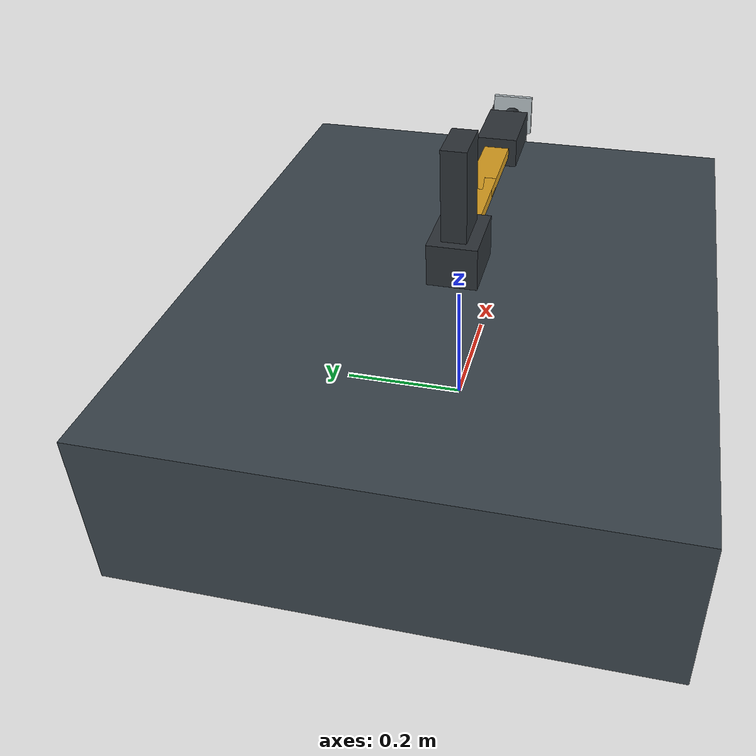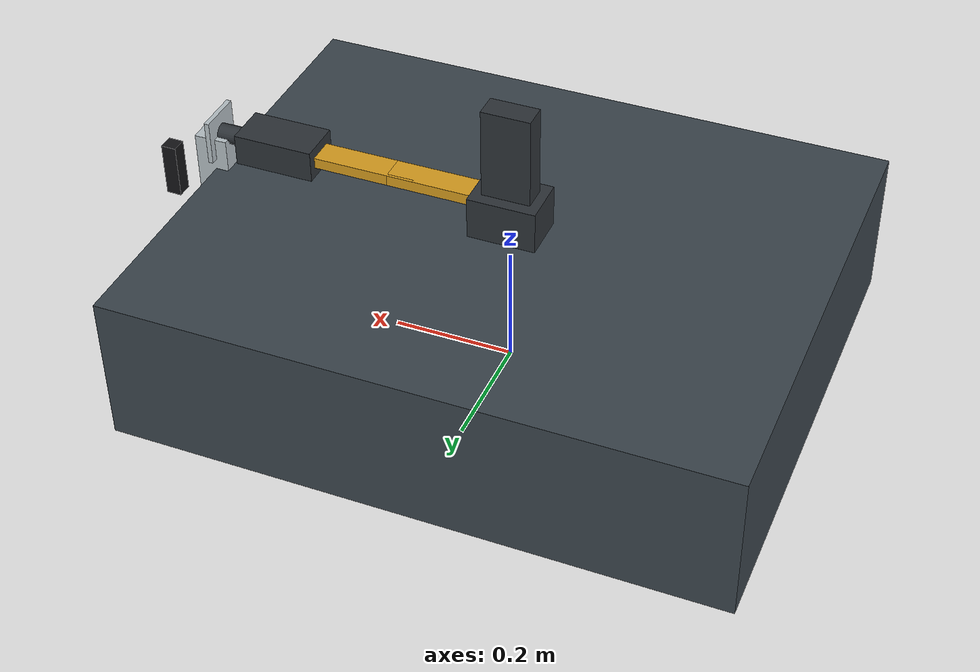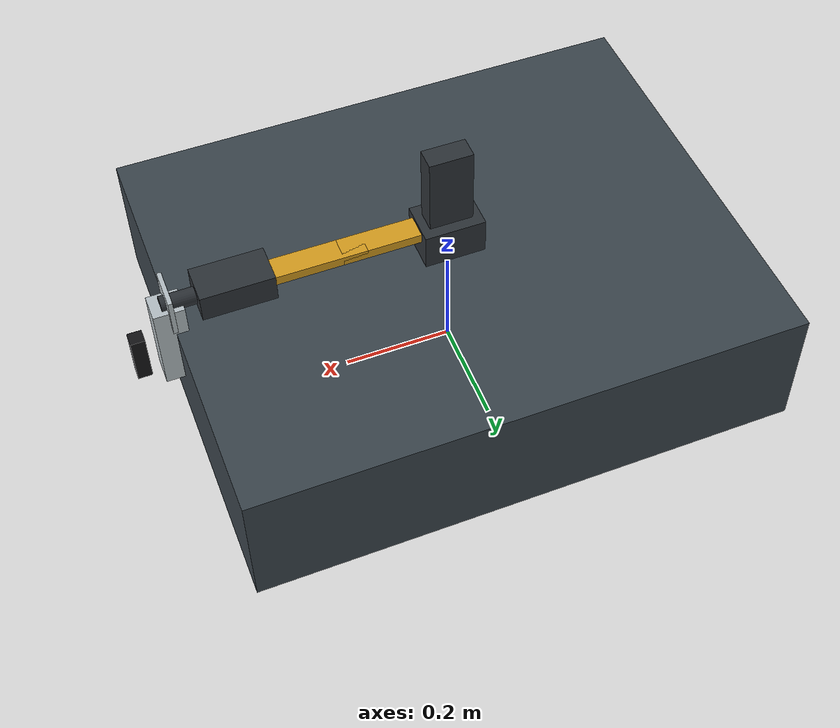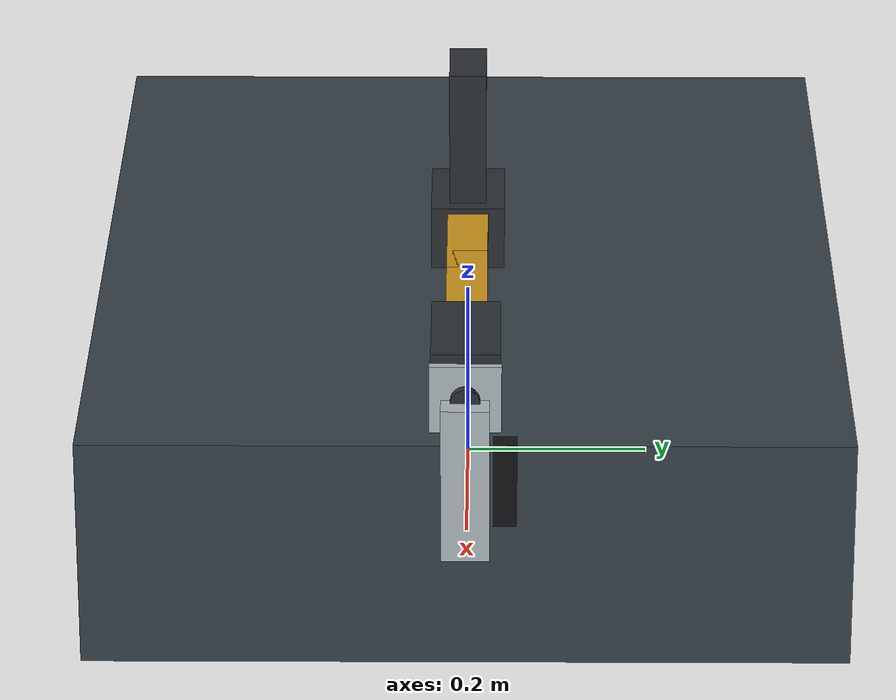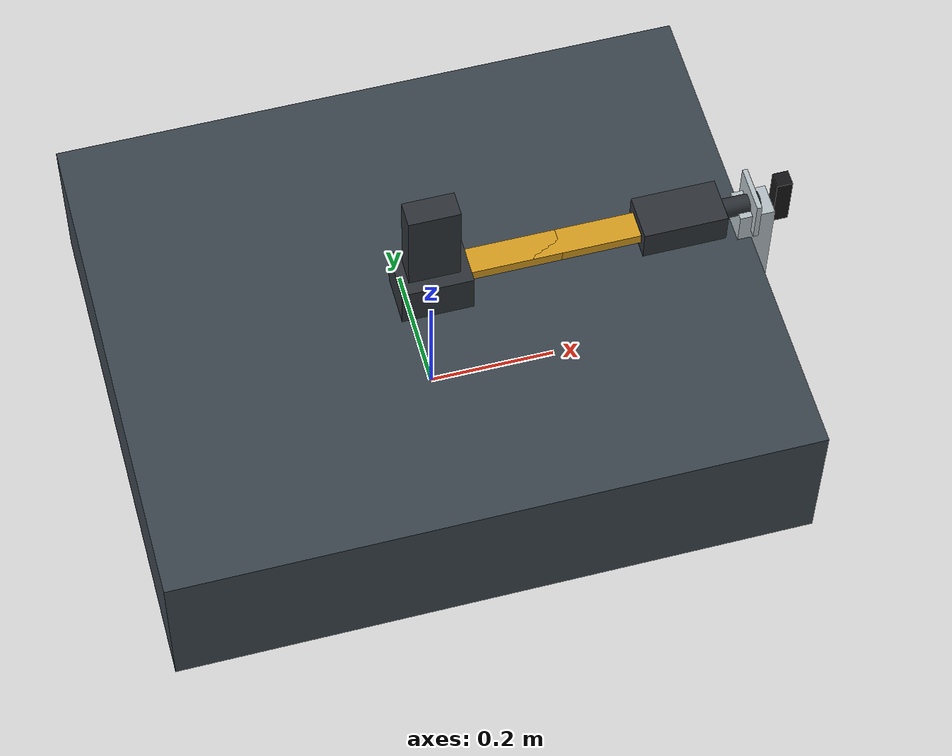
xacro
<?xml version="1.0"?>
<robot xmlns:xacro="http://www.ros.org/wiki/xacro" name="lemon_robot_stage2">
  <xacro:include filename="macros/inertial_macros.xacro"/>

  <xacro:arg name="use_gz_ros2_control" default="false"/>
  <xacro:arg name="controllers_file" default="/tmp/lemon_robot_stage2_controllers.yaml"/>

  <!-- Confirmed project dimensions. -->
  <xacro:property name="joint_ctc" value="0.176"/>
  <xacro:property name="link_len" value="0.220"/>
  <xacro:property name="link_w" value="0.044"/>
  <xacro:property name="link_t" value="0.018"/>
  <xacro:property name="bench_mast_h" value="0.220"/>
  <xacro:property name="d435_x" value="0.090"/>
  <xacro:property name="d435_y" value="0.025"/>
  <xacro:property name="d435_z" value="0.025"/>

  <!-- Simulation-only values; not manufacturing dimensions or measured joint limits. -->
  <xacro:property name="base_x" value="1.00"/>
  <xacro:property name="base_y" value="0.80"/>
  <xacro:property name="base_z" value="0.25"/>
  <xacro:property name="z_upper" value="0.18"/>
  <xacro:property name="yaw_limit" value="2.967059728"/>
  <xacro:property name="pitch_limit" value="1.570796327"/>
  <xacro:property name="roll_limit" value="3.141592654"/>
  <xacro:property name="j3_to_j4" value="0.072"/>
  <xacro:property name="j4_to_j5" value="0.040"/>
  <xacro:property name="j5_to_flange" value="0.034"/>
  <xacro:property name="camera_x" value="0.060"/>
  <xacro:property name="camera_y" value="0.040"/>
  <xacro:property name="camera_z" value="0.050"/>

  <material name="stage2_base"><color rgba="0.23 0.27 0.30 1"/></material>
  <material name="stage2_arm"><color rgba="0.85 0.62 0.12 1"/></material>
  <material name="stage2_joint"><color rgba="0.18 0.20 0.22 1"/></material>
  <material name="stage2_tool"><color rgba="0.72 0.76 0.78 1"/></material>
  <material name="stage2_camera"><color rgba="0.08 0.08 0.09 1"/></material>

  <link name="base_footprint"/>
  <link name="base_link">
    <visual><origin xyz="0 0 ${base_z/2.0}" rpy="0 0 0"/><geometry><box size="${base_x} ${base_y} ${base_z}"/></geometry><material name="stage2_base"/></visual>
    <collision><origin xyz="0 0 ${base_z/2.0}" rpy="0 0 0"/><geometry><box size="${base_x} ${base_y} ${base_z}"/></geometry></collision>
    <xacro:box_inertial mass="30.0" x="${base_x}" y="${base_y}" z="${base_z}" origin_xyz="0 0 ${base_z/2.0}"/>
  </link>
  <joint name="base_footprint_joint" type="fixed"><origin xyz="0 0 0" rpy="0 0 0"/><parent link="base_footprint"/><child link="base_link"/></joint>

  <link name="z_column_link">
    <visual><origin xyz="0 0 ${base_z + bench_mast_h/2.0}" rpy="0 0 0"/><geometry><box size="0.080 0.040 ${bench_mast_h}"/></geometry><material name="stage2_joint"/></visual>
    <collision><origin xyz="0 0 ${base_z + bench_mast_h/2.0}" rpy="0 0 0"/><geometry><box size="0.080 0.040 ${bench_mast_h}"/></geometry></collision>
    <xacro:box_inertial mass="1.0" x="0.080" y="0.040" z="${bench_mast_h}" origin_xyz="0 0 ${base_z + bench_mast_h/2.0}"/>
  </link>
  <joint name="mast_mount_joint" type="fixed"><origin xyz="0 0 0" rpy="0 0 0"/><parent link="base_link"/><child link="z_column_link"/></joint>

  <link name="z_carriage_link">
    <visual><origin xyz="0 0 ${base_z + 0.035}" rpy="0 0 0"/><geometry><box size="0.112 0.080 0.070"/></geometry><material name="stage2_joint"/></visual>
    <collision><origin xyz="0 0 ${base_z + 0.035}" rpy="0 0 0"/><geometry><box size="0.112 0.080 0.070"/></geometry></collision>
    <xacro:box_inertial mass="0.8" x="0.112" y="0.080" z="0.070" origin_xyz="0 0 ${base_z + 0.035}"/>
  </link>
  <joint name="z_axis_joint" type="prismatic"><origin xyz="0 0 0" rpy="0 0 0"/><parent link="z_column_link"/><child link="z_carriage_link"/><axis xyz="0 0 1"/><limit lower="0.0" upper="${z_upper}" effort="800" velocity="0.20"/><dynamics damping="8.0" friction="2.0"/></joint>

  <link name="j1_link">
    <visual><origin xyz="${link_len/2.0 - 0.022} 0 0" rpy="0 0 0"/><geometry><box size="${link_len} ${link_w} ${link_t}"/></geometry><material name="stage2_arm"/></visual>
    <collision><origin xyz="${link_len/2.0 - 0.022} 0 0" rpy="0 0 0"/><geometry><box size="${link_len} ${link_w} ${link_t}"/></geometry></collision>
    <xacro:box_inertial mass="0.45" x="${link_len}" y="${link_w}" z="${link_t}" origin_xyz="${link_len/2.0 - 0.022} 0 0"/>
  </link>
  <joint name="j1_joint" type="revolute"><origin xyz="0 0 ${base_z + 0.055}" rpy="0 0 0"/><parent link="z_carriage_link"/><child link="j1_link"/><axis xyz="0 0 1"/><limit lower="-${yaw_limit}" upper="${yaw_limit}" effort="120" velocity="1.0"/><dynamics damping="0.5" friction="0.1"/></joint>

  <link name="j2_link">
    <visual><origin xyz="${link_len/2.0 - 0.022} 0 0" rpy="0 0 0"/><geometry><box size="${link_len} ${link_w} ${link_t}"/></geometry><material name="stage2_arm"/></visual>
    <collision><origin xyz="${link_len/2.0 - 0.022} 0 0" rpy="0 0 0"/><geometry><box size="${link_len} ${link_w} ${link_t}"/></geometry></collision>
    <xacro:box_inertial mass="0.45" x="${link_len}" y="${link_w}" z="${link_t}" origin_xyz="${link_len/2.0 - 0.022} 0 0"/>
  </link>
  <joint name="j2_joint" type="revolute"><origin xyz="${joint_ctc} 0 0" rpy="0 0 0"/><parent link="j1_link"/><child link="j2_link"/><axis xyz="0 0 1"/><limit lower="-${yaw_limit}" upper="${yaw_limit}" effort="100" velocity="1.0"/><dynamics damping="0.5" friction="0.1"/></joint>

  <link name="j3_link">
    <visual><origin xyz="0.036 0 0" rpy="0 0 0"/><geometry><box size="0.132 0.072 0.052"/></geometry><material name="stage2_joint"/></visual>
    <collision><origin xyz="0.036 0 0" rpy="0 0 0"/><geometry><box size="0.132 0.072 0.052"/></geometry></collision>
    <xacro:box_inertial mass="0.35" x="0.132" y="0.072" z="0.052" origin_xyz="0.036 0 0"/>
  </link>
  <joint name="j3_joint" type="revolute"><origin xyz="${joint_ctc} 0 0" rpy="0 0 0"/><parent link="j2_link"/><child link="j3_link"/><axis xyz="0 0 1"/><limit lower="-${yaw_limit}" upper="${yaw_limit}" effort="80" velocity="1.2"/><dynamics damping="0.4" friction="0.08"/></joint>

  <link name="j4_link">
    <visual><geometry><box size="0.058 0.050 0.040"/></geometry><material name="stage2_joint"/></visual>
    <collision><geometry><box size="0.058 0.050 0.040"/></geometry></collision>
    <xacro:box_inertial mass="0.25" x="0.058" y="0.050" z="0.040"/>
  </link>
  <joint name="j4_joint" type="revolute"><origin xyz="${j3_to_j4} 0 0" rpy="0 0 0"/><parent link="j3_link"/><child link="j4_link"/><axis xyz="0 1 0"/><limit lower="-${pitch_limit}" upper="${pitch_limit}" effort="50" velocity="1.5"/><dynamics damping="0.3" friction="0.05"/></joint>

  <link name="j5_link">
    <visual><origin xyz="0.017 0 0" rpy="0 1.570796327 0"/><geometry><cylinder radius="0.01525" length="0.068"/></geometry><material name="stage2_joint"/></visual>
    <collision><origin xyz="0.017 0 0" rpy="0 1.570796327 0"/><geometry><cylinder radius="0.016" length="0.068"/></geometry></collision>
    <xacro:box_inertial mass="0.20" x="0.068" y="0.032" z="0.032" origin_xyz="0.017 0 0"/>
  </link>
  <joint name="j5_joint" type="revolute"><origin xyz="${j4_to_j5} 0 0" rpy="0 0 0"/><parent link="j4_link"/><child link="j5_link"/><axis xyz="1 0 0"/><limit lower="-${roll_limit}" upper="${roll_limit}" effort="35" velocity="1.8"/><dynamics damping="0.2" friction="0.04"/></joint>

  <link name="flange_link">
    <visual><origin xyz="0 0 0.004" rpy="0 0 0"/><geometry><box size="0.074 0.074 0.008"/></geometry><material name="stage2_tool"/></visual>
    <collision><origin xyz="0 0 0.004" rpy="0 0 0"/><geometry><box size="0.074 0.074 0.008"/></geometry></collision>
    <xacro:box_inertial mass="0.15" x="0.074" y="0.074" z="0.008" origin_xyz="0 0 0.004"/>
  </link>
  <joint name="flange_joint" type="fixed"><origin xyz="${j5_to_flange} 0 0" rpy="0 1.570796327 0"/><parent link="j5_link"/><child link="flange_link"/></joint>

  <link name="tool0"/>
  <joint name="tool0_joint" type="fixed"><origin xyz="0 0 0.008" rpy="0 0 0"/><parent link="flange_link"/><child link="tool0"/></joint>

  <link name="pruner_link">
    <visual><origin xyz="0.085 0 0" rpy="0 0 0"/><geometry><box size="0.170 0.050 0.055"/></geometry><material name="stage2_tool"/></visual>
    <collision><origin xyz="0.085 0 0" rpy="0 0 0"/><geometry><box size="0.170 0.050 0.055"/></geometry></collision>
    <xacro:box_inertial mass="0.9" x="0.170" y="0.050" z="0.055" origin_xyz="0.085 0 0"/>
  </link>
  <joint name="pruner_joint" type="fixed"><origin xyz="0 0 0" rpy="0 0 0"/><parent link="tool0"/><child link="pruner_link"/></joint>

  <link name="blade_reference"/>
  <joint name="blade_reference_joint" type="fixed"><origin xyz="0.170 0 0" rpy="0 0 0"/><parent link="pruner_link"/><child link="blade_reference"/></joint>

  <link name="camera_mount_link"/>
  <joint name="camera_mount_joint" type="fixed"><origin xyz="${camera_x} ${camera_y} ${camera_z}" rpy="0 0 0"/><parent link="tool0"/><child link="camera_mount_link"/></joint>

  <link name="camera_link">
    <visual><origin xyz="0 0 ${d435_z/2.0}" rpy="0 0 0"/><geometry><box size="${d435_x} ${d435_y} ${d435_z}"/></geometry><material name="stage2_camera"/></visual>
    <collision><origin xyz="0 0 ${d435_z/2.0}" rpy="0 0 0"/><geometry><box size="${d435_x} ${d435_y} ${d435_z}"/></geometry></collision>
    <xacro:box_inertial mass="0.10" x="${d435_x}" y="${d435_y}" z="${d435_z}" origin_xyz="0 0 ${d435_z/2.0}"/>
  </link>
  <joint name="camera_joint" type="fixed"><origin xyz="0 0 0" rpy="0 0 0"/><parent link="camera_mount_link"/><child link="camera_link"/></joint>

  <link name="camera_color_optical_frame"/>
  <joint name="camera_optical_joint" type="fixed"><origin xyz="0 0 0" rpy="-1.570796327 0 -1.570796327"/><parent link="camera_link"/><child link="camera_color_optical_frame"/></joint>

  <xacro:if value="$(arg use_gz_ros2_control)">
    <ros2_control name="GazeboSimSystem" type="system">
      <hardware><plugin>gz_ros2_control/GazeboSimSystem</plugin></hardware>
      <joint name="z_axis_joint"><command_interface name="position"><param name="min">0.0</param><param name="max">${z_upper}</param></command_interface><state_interface name="position"><param name="initial_value">0.0</param></state_interface><state_interface name="velocity"/></joint>
      <joint name="j1_joint"><command_interface name="position"><param name="min">-${yaw_limit}</param><param name="max">${yaw_limit}</param></command_interface><state_interface name="position"><param name="initial_value">0.0</param></state_interface><state_interface name="velocity"/></joint>
      <joint name="j2_joint"><command_interface name="position"><param name="min">-${yaw_limit}</param><param name="max">${yaw_limit}</param></command_interface><state_interface name="position"><param name="initial_value">0.0</param></state_interface><state_interface name="velocity"/></joint>
      <joint name="j3_joint"><command_interface name="position"><param name="min">-${yaw_limit}</param><param name="max">${yaw_limit}</param></command_interface><state_interface name="position"><param name="initial_value">0.0</param></state_interface><state_interface name="velocity"/></joint>
      <joint name="j4_joint"><command_interface name="position"><param name="min">-${pitch_limit}</param><param name="max">${pitch_limit}</param></command_interface><state_interface name="position"><param name="initial_value">0.0</param></state_interface><state_interface name="velocity"/></joint>
      <joint name="j5_joint"><command_interface name="position"><param name="min">-${roll_limit}</param><param name="max">${roll_limit}</param></command_interface><state_interface name="position"><param name="initial_value">0.0</param></state_interface><state_interface name="velocity"/></joint>
    </ros2_control>
    <gazebo><plugin filename="libgz_ros2_control-system.so" name="gz_ros2_control::GazeboSimROS2ControlPlugin"><parameters>$(arg controllers_file)</parameters></plugin></gazebo>
  </xacro:if>
</robot>

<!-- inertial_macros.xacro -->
<robot xmlns:xacro="http://www.ros.org/wiki/xacro">
  <xacro:macro name="box_inertial" params="mass x y z origin_xyz:='0 0 0'">
    <inertial>
      <origin xyz="${origin_xyz}" rpy="0 0 0"/>
      <mass value="${mass}"/>
      <inertia
        ixx="${mass * (y*y + z*z) / 12.0}"
        ixy="0" ixz="0"
        iyy="${mass * (x*x + z*z) / 12.0}"
        iyz="0"
        izz="${mass * (x*x + y*y) / 12.0}"/>
    </inertial>
  </xacro:macro>
</robot>
